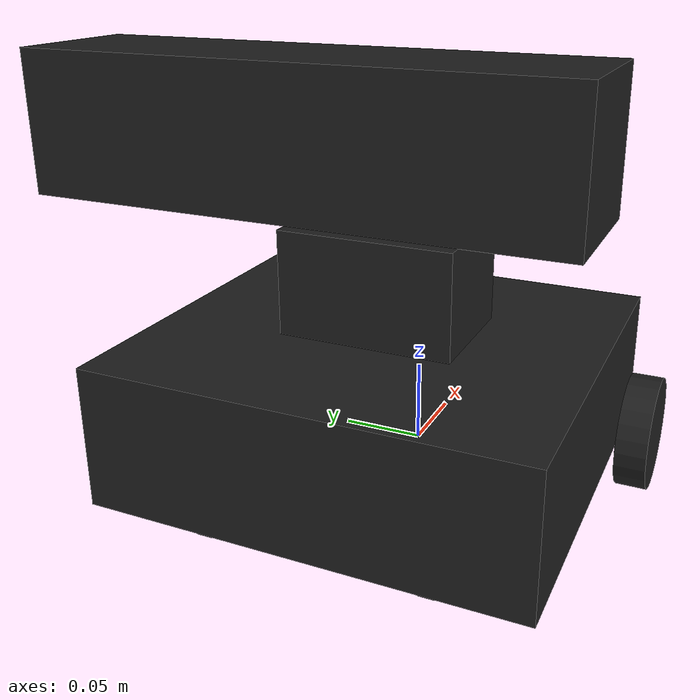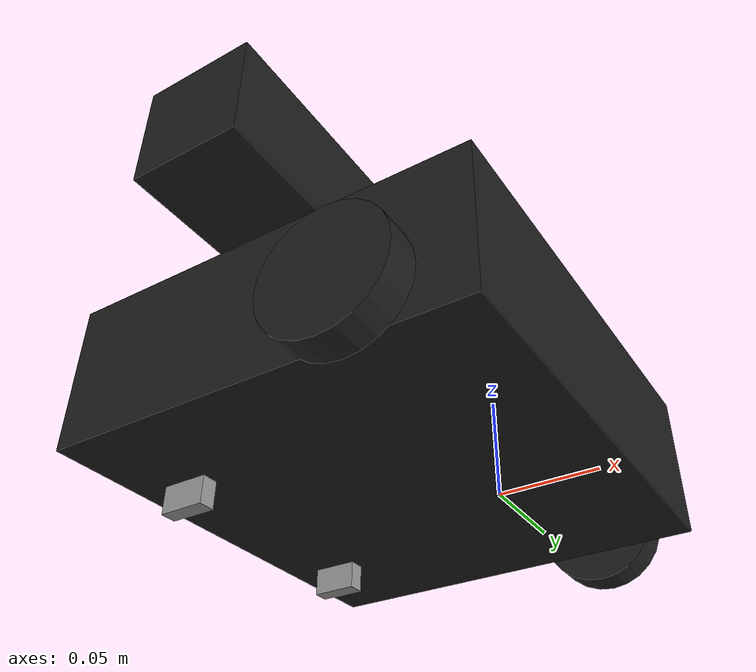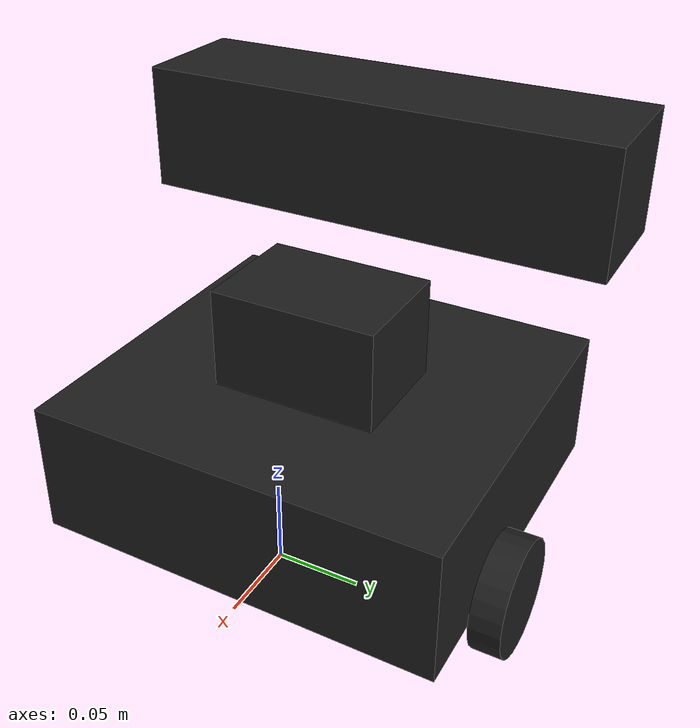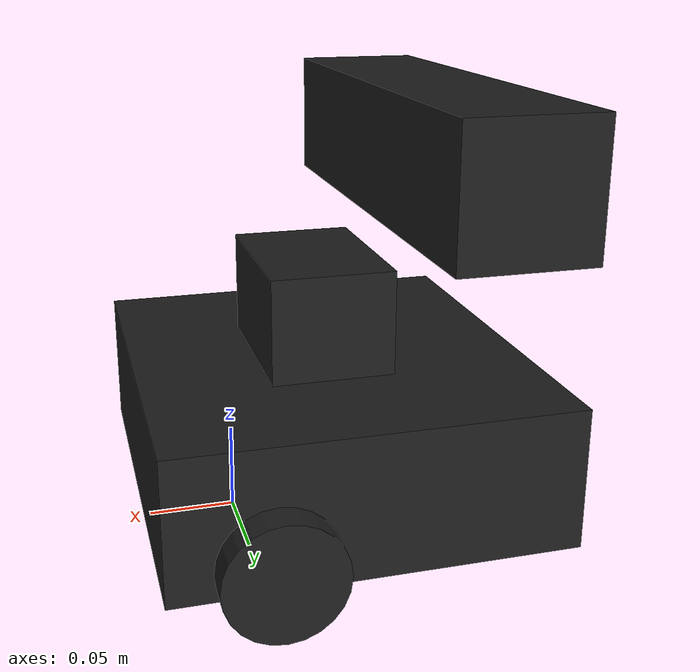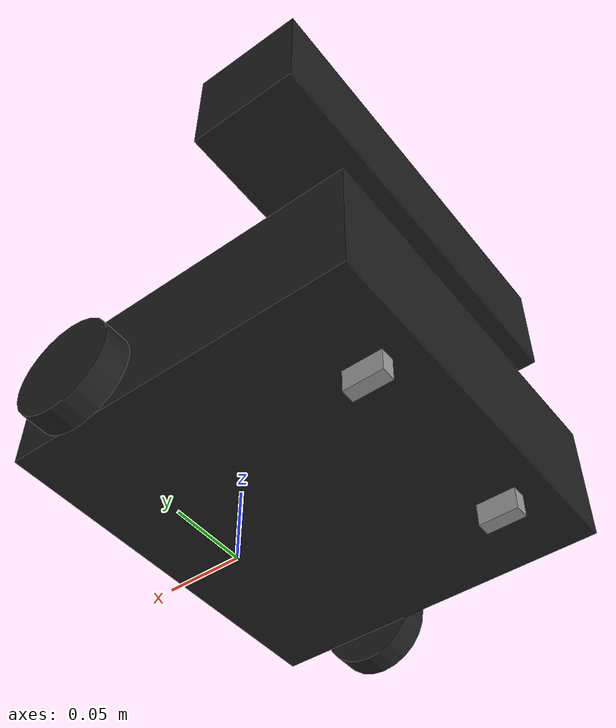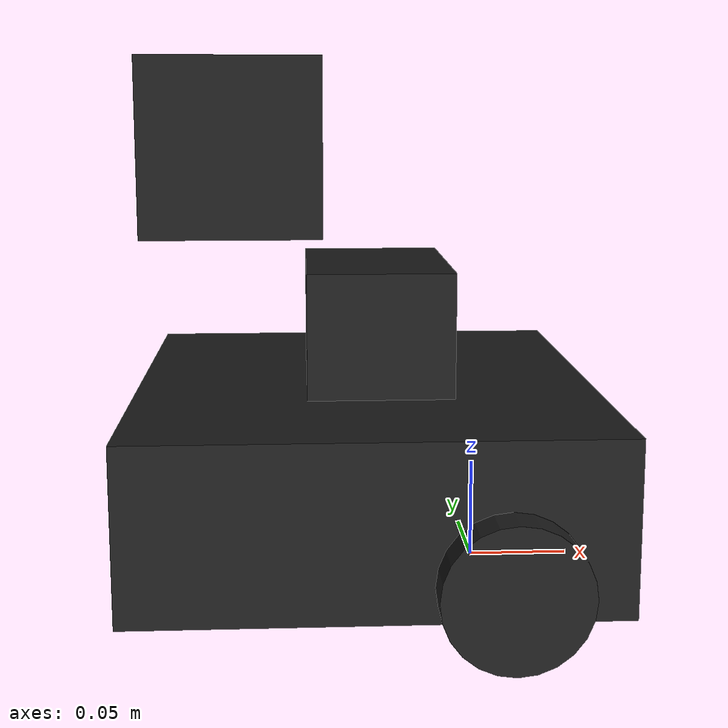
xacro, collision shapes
<?xml version="1.0" ?>
<robot name="dami2" xmlns:xacro="http://ros.org/wiki/xacro">
  <xacro:include filename="$(find dami2_description)/urdf/common_properties.xacro"/>
  <xacro:include filename="$(find dami2_description)/urdf/dami2.gazebo.xacro"/>

  <link name="base_footprint"/>

  <joint name="base_joint" type="fixed">
    <parent link="base_footprint"/>
    <child link="base_link"/>
    <origin xyz="0.0 0.0 0.015" rpy="0 0 0"/>
  </joint>

  <link name="base_link">
    <visual>
      <origin xyz="0.0 0.0 0.0" rpy="0 0 0"/>
      <geometry>
        <mesh filename="package://dami2_description/meshes/bases/base_rev.stl" scale="0.001 0.001 0.001"/>
      </geometry>
      <material name="light_black"/>
    </visual>

    <collision>
      <origin xyz="-0.0558386 0.0 0.04025" rpy="0 0 0"/>
      <geometry>
        <box size="0.223677 0.245578 0.0805"/>
      </geometry>
    </collision>

    <inertial>
      <origin xyz="0 0 0" rpy="0 0 0"/>
      <mass value="1.3729096e+00"/>
      <inertia ixx="8.7002718e-03" ixy="-4.7576583e-05" ixz="1.1160499e-04"
               iyy="8.6195418e-03" iyz="-3.5422299e-06"
               izz="1.4612727e-02" />
    </inertial>
  </link>

  <joint name="wheel_left_joint" type="continuous">
    <parent link="base_link"/>
    <child link="wheel_left_link"/>
    <origin xyz="0.0 0.138 0.01925" rpy="-1.57 0 0"/>
    <axis xyz="0 0 1"/>
  </joint>

  <link name="wheel_left_link">
    <visual>
      <origin xyz="0 0 0" rpy="1.57 0 0"/>
      <geometry>
        <mesh filename="package://dami2_description/meshes/wheels/left_tire.stl" scale="0.001 0.001 0.001"/>
      </geometry>
      <material name="dark"/>
    </visual>

    <collision>
      <origin xyz="0 0 0" rpy="0 0 0"/>
      <geometry>
        <cylinder length="0.0176" radius="0.0325"/>
      </geometry>
    </collision>

    <inertial>
      <origin xyz="0 0 0" />
      <mass value="2.8498940e-02" />
      <inertia ixx="1.1175580e-05" ixy="-4.2369783e-11" ixz="-5.9381719e-09"
               iyy="1.1192413e-05" iyz="-1.4400107e-11"
               izz="2.0712558e-05" />
     </inertial>
  </link>

  <joint name="wheel_right_joint" type="continuous">
    <parent link="base_link"/>
    <child link="wheel_right_link"/>
    <origin xyz="0.0 -0.138 0.01925" rpy="-1.57 0 0"/>
    <axis xyz="0 0 1"/>
  </joint>

  <link name="wheel_right_link">
    <visual>
      <origin xyz="0 0 0" rpy="1.57 0 0"/>
      <geometry>
        <mesh filename="package://dami2_description/meshes/wheels/right_tire.stl" scale="0.001 0.001 0.001"/>
      </geometry>
      <material name="dark"/>
    </visual>

    <collision>
      <origin xyz="0 0 0" rpy="0 0 0"/>
      <geometry>
        <cylinder length="0.0176" radius="0.0325"/>
      </geometry>
    </collision>

    <inertial>
      <origin xyz="0 0 0"/>
      <mass value="2.8498940e-02" />
      <inertia ixx="1.1175580e-05" ixy="-4.2369783e-11" ixz="-5.9381719e-09"
               iyy="1.1192413e-05" iyz="-1.4400107e-11"
               izz="2.0712558e-05" />
    </inertial>
  </link>

  <joint name="caster_back_right_joint" type="fixed">
    <parent link="base_link"/>
    <child link="caster_back_right_link"/>
    <origin xyz="-0.1376 -0.064 0.0" rpy="0 0 0"/>
  </joint>

  <link name="caster_back_right_link">
    <visual>
      <origin xyz="0 0 0" rpy="0 0 0"/>
      <geometry>
        <mesh filename="package://dami2_description/meshes/wheels/caster.stl" scale="0.001 0.001 0.001"/>
      </geometry>
      <material name="grey"/>
    </visual>

    <collision>
      <origin xyz="0 0 -0.0075" rpy="0 0 0"/>
      <geometry>
        <box size="0.025 0.009 0.015"/>
      </geometry>
    </collision>

    <inertial>
      <origin xyz="0 0 0" />
      <mass value="0.005" />
      <inertia ixx="0.001" ixy="0.0" ixz="0.0"
               iyy="0.001" iyz="0.0"
               izz="0.001" />
    </inertial>
  </link>

  <joint name="caster_back_left_joint" type="fixed">
    <parent link="base_link"/>
    <child link="caster_back_left_link"/>
    <origin xyz="-0.1376 0.064 0.0" rpy="0 0 0"/>
  </joint>

  <link name="caster_back_left_link">
    <visual>
      <origin xyz="0 0 0" rpy="0 0 0"/>
      <geometry>
        <mesh filename="package://dami2_description/meshes/wheels/caster.stl" scale="0.001 0.001 0.001"/>
      </geometry>
      <material name="grey"/>
    </visual>

    <collision>
      <origin xyz="0 0 -0.0075" rpy="0 0 0"/>
      <geometry>
        <box size="0.025 0.009 0.015"/>
      </geometry>
    </collision>

    <inertial>
      <origin xyz="0 0 0" />
      <mass value="0.005" />
      <inertia ixx="0.001" ixy="0.0" ixz="0.0"
               iyy="0.001" iyz="0.0"
               izz="0.001" />
    </inertial>
  </link>

  <joint name="imu_joint" type="fixed">
    <parent link="base_link"/>
    <child link="imu_link"/>
    <origin xyz="0.0 0.0 0.0805" rpy="0 0 0"/>
  </joint>

  <link name="imu_link">
    <visual>
      <origin xyz="0 0 0 " rpy="0 0 0" />
      <geometry>
        <mesh filename="package://dami2_description/meshes/sensors/imu.stl" scale="0.001 0.001 0.001"/>
      </geometry>
      <material name="dark"/>
    </visual>
  </link>

  <joint name="scan_joint" type="fixed">
    <parent link="base_link"/>
    <child link="depth_camera_link"/>
    <origin xyz="-0.115 0.01 0.179" rpy="0 0 0"/>

  </joint>

  <link name="depth_camera_link">
    <inertial>
      <mass value="0.01" />
      <origin xyz="0 0 0" />
      <inertia ixx="0.001" ixy="0.0" ixz="0.0"
               iyy="0.001" iyz="0.0"
               izz="0.001" />
    </inertial>
    <visual>
      <origin xyz="0 0 0 " rpy="0 0 1.570796" />
      <geometry>
        <mesh filename="package://dami2_description/meshes/sensors/kinect.stl" scale="0.001 0.001 0.001"/>
      </geometry>
      <material name="dark"/>
    </visual>
    <collision>
      <origin xyz="0 0 0.0225" rpy="0 0 0" />
      <geometry>
        <box size="0.073 0.276 0.072"/>
      </geometry>
    </collision>
  </link>

  <joint name="rplidar_joint" type="fixed">
    <origin xyz="-0.050 0.0 0.0805" rpy="0 0 0" />
    <parent link="base_link" />
    <child link="rplidar_link" />
  </joint>

  <link name="rplidar_link">
  <inertial>
      <mass value="0.17" />
      <origin xyz="0 0 0" />
      <inertia ixx="1e-6" ixy="0.0" ixz="0.0"
               iyy="1e-6" iyz="0.0"
               izz="1e-6" />
    </inertial>
    <visual>
      <origin xyz="0 0 0 " rpy="0 0 0" />
      <geometry>
        <mesh filename="package://dami2_description/meshes/sensors/lidar.stl" scale="0.001 0.001 0.001"/>
      </geometry>
      <material name="dark"/>
    </visual>
    <collision>
      <origin xyz="0 0 0.030" rpy="0 0 0" />
      <geometry>
        <box size="0.070 0.100 0.060"/>
      </geometry>
    </collision>
  </link>

</robot>
